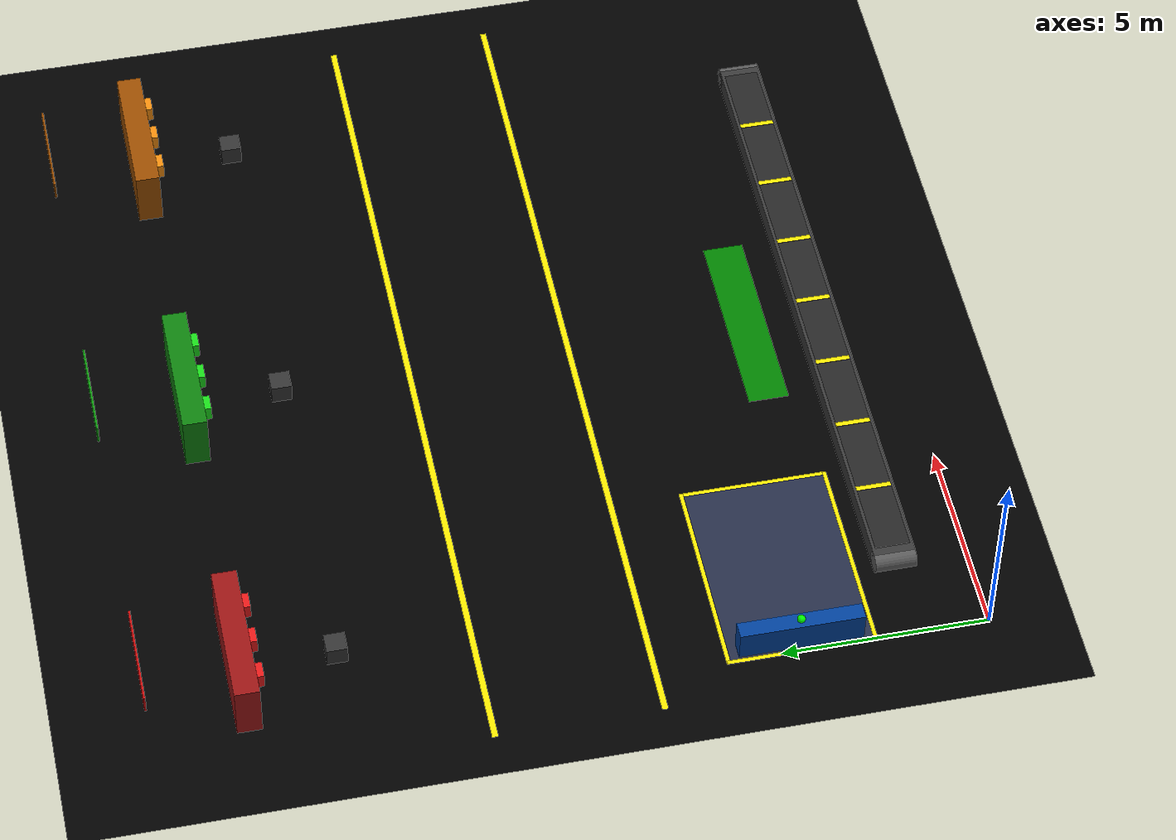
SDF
<?xml version="1.0" ?>
<sdf version="1.6">
  <world name="aria_warehouse">

    <physics type="ode">
      <max_step_size>0.001</max_step_size>
      <real_time_factor>1</real_time_factor>
      <real_time_update_rate>1000</real_time_update_rate>
    </physics>

    <scene>
      <ambient>0.4 0.4 0.4 1</ambient>
      <background>0.1 0.1 0.1 1</background>
      <shadows>false</shadows>
      <grid>false</grid>
      <sky><clouds><speed>0</speed></clouds></sky>
      <origin_visual>false</origin_visual>
    </scene>

    <light name="sun" type="directional">
      <cast_shadows>false</cast_shadows>
      <pose>10 10 20 0 0 0</pose>
      <diffuse>0.8 0.8 0.8 1</diffuse>
      <specular>0.1 0.1 0.1 1</specular>
      <direction>0 0 -1</direction>
    </light>

    <!-- Floor - collision only, transparent visual -->
    <model name="floor">
      <static>true</static>
      <pose>10 10 0 0 0 0</pose>
      <link name="link">
        <collision name="col">
          <geometry><plane><normal>0 0 1</normal><size>24 24</size></plane></geometry>
          <surface><friction><ode><mu>100</mu><mu2>50</mu2></ode></friction></surface>
        </collision>
        <visual name="vis">
          <geometry><plane><normal>0 0 1</normal><size>24 24</size></plane></geometry>
          <material>
            <ambient>0 0 0 1</ambient>
            <diffuse>0 0 0 1</diffuse>
            <specular>0 0 0 1</specular>
            <emissive>0.12 0.14 0.18 1</emissive>
          </material>
        </visual>
      </link>
    </model>

    <!-- Yellow lane lines -->
    <model name="lane_1"><static>true</static><pose>10 8 0.001 0 0 0</pose>
      <link name="link"><visual name="v"><geometry><box><size>22 0.15 0.002</size></box></geometry>
        <material><ambient>1 0.8 0 1</ambient><diffuse>1 0.9 0 1</diffuse><emissive>0.3 0.2 0 1</emissive></material>
      </visual></link></model>

    <model name="lane_2"><static>true</static><pose>10 12 0.001 0 0 0</pose>
      <link name="link"><visual name="v"><geometry><box><size>22 0.15 0.002</size></box></geometry>
        <material><ambient>1 0.8 0 1</ambient><diffuse>1 0.9 0 1</diffuse><emissive>0.3 0.2 0 1</emissive></material>
      </visual></link></model>

    <!-- ═══ ZONE A — Auto Parts (left) ═══ -->
    <model name="rack_A"><static>true</static><pose>2 17.5 0.75 0 0 0</pose>
      <link name="link">
        <collision name="c"><geometry><box><size>3.5 0.6 1.5</size></box></geometry></collision>
        <visual name="v"><geometry><box><size>3.5 0.6 1.5</size></box></geometry>
          <material><ambient>0.5 0.08 0.08 1</ambient><diffuse>0.6 0.08 0.08 1</diffuse>
            <emissive>0.1 0.0 0.0 1</emissive></material></visual>
      </link></model>
    <model name="box_A1"><static>true</static><pose>1.0 17.2 1.1 0 0 0</pose>
      <link name="link"><visual name="v"><geometry><box><size>0.4 0.35 0.4</size></box></geometry>
        <material><ambient>0.8 0.1 0.1 1</ambient><diffuse>0.9 0.1 0.1 1</diffuse>
          <emissive>0.15 0.0 0.0 1</emissive></material></visual></link></model>
    <model name="box_A2"><static>true</static><pose>2.0 17.2 1.1 0 0 0</pose>
      <link name="link"><visual name="v"><geometry><box><size>0.4 0.35 0.4</size></box></geometry>
        <material><ambient>0.8 0.1 0.1 1</ambient><diffuse>0.9 0.1 0.1 1</diffuse>
          <emissive>0.15 0.0 0.0 1</emissive></material></visual></link></model>
    <model name="box_A3"><static>true</static><pose>3.0 17.2 1.1 0 0 0</pose>
      <link name="link"><visual name="v"><geometry><box><size>0.4 0.35 0.4</size></box></geometry>
        <material><ambient>0.8 0.1 0.1 1</ambient><diffuse>0.9 0.1 0.1 1</diffuse>
          <emissive>0.15 0.0 0.0 1</emissive></material></visual></link></model>
    <!-- UR10 pedestal A -->
    <model name="ped_A"><static>true</static><pose>2 15.2 0.25 0 0 0</pose>
      <link name="link">
        <collision name="c"><geometry><box><size>0.5 0.5 0.5</size></box></geometry></collision>
        <visual name="v"><geometry><box><size>0.5 0.5 0.5</size></box></geometry>
          <material><ambient>0.15 0.15 0.15 1</ambient><diffuse>0.2 0.2 0.2 1</diffuse>
            <emissive>0.03 0.03 0.03 1</emissive></material></visual>
      </link></model>
    <!-- Zone A sign -->
    <model name="sign_A"><static>true</static><pose>2 19.8 1.0 0 0 0</pose>
      <link name="link"><visual name="v"><geometry><box><size>2.5 0.05 0.5</size></box></geometry>
        <material><ambient>0.7 0.05 0.05 1</ambient><diffuse>0.8 0.05 0.05 1</diffuse>
          <emissive>0.2 0.0 0.0 1</emissive></material></visual></link></model>

    <!-- ═══ ZONE B — Electronics (center) ═══ -->
    <model name="rack_B"><static>true</static><pose>10 17.5 0.75 0 0 0</pose>
      <link name="link">
        <collision name="c"><geometry><box><size>3.5 0.6 1.5</size></box></geometry></collision>
        <visual name="v"><geometry><box><size>3.5 0.6 1.5</size></box></geometry>
          <material><ambient>0.05 0.4 0.05 1</ambient><diffuse>0.05 0.5 0.05 1</diffuse>
            <emissive>0.0 0.08 0.0 1</emissive></material></visual>
      </link></model>
    <model name="box_B1"><static>true</static><pose>9.0 17.2 1.1 0 0 0</pose>
      <link name="link"><visual name="v"><geometry><box><size>0.4 0.35 0.4</size></box></geometry>
        <material><ambient>0.1 0.75 0.1 1</ambient><diffuse>0.1 0.85 0.1 1</diffuse>
          <emissive>0.0 0.12 0.0 1</emissive></material></visual></link></model>
    <model name="box_B2"><static>true</static><pose>10.0 17.2 1.1 0 0 0</pose>
      <link name="link"><visual name="v"><geometry><box><size>0.4 0.35 0.4</size></box></geometry>
        <material><ambient>0.1 0.75 0.1 1</ambient><diffuse>0.1 0.85 0.1 1</diffuse>
          <emissive>0.0 0.12 0.0 1</emissive></material></visual></link></model>
    <model name="box_B3"><static>true</static><pose>11.0 17.2 1.1 0 0 0</pose>
      <link name="link"><visual name="v"><geometry><box><size>0.4 0.35 0.4</size></box></geometry>
        <material><ambient>0.1 0.75 0.1 1</ambient><diffuse>0.1 0.85 0.1 1</diffuse>
          <emissive>0.0 0.12 0.0 1</emissive></material></visual></link></model>
    <model name="ped_B"><static>true</static><pose>10 15.2 0.25 0 0 0</pose>
      <link name="link">
        <collision name="c"><geometry><box><size>0.5 0.5 0.5</size></box></geometry></collision>
        <visual name="v"><geometry><box><size>0.5 0.5 0.5</size></box></geometry>
          <material><ambient>0.15 0.15 0.15 1</ambient><diffuse>0.2 0.2 0.2 1</diffuse>
            <emissive>0.03 0.03 0.03 1</emissive></material></visual>
      </link></model>
    <model name="sign_B"><static>true</static><pose>10 19.8 1.0 0 0 0</pose>
      <link name="link"><visual name="v"><geometry><box><size>2.5 0.05 0.5</size></box></geometry>
        <material><ambient>0.05 0.5 0.05 1</ambient><diffuse>0.05 0.6 0.05 1</diffuse>
          <emissive>0.0 0.15 0.0 1</emissive></material></visual></link></model>

    <!-- ═══ ZONE C — Raw Materials (right) ═══ -->
    <model name="rack_C"><static>true</static><pose>18 17.5 0.75 0 0 0</pose>
      <link name="link">
        <collision name="c"><geometry><box><size>3.5 0.6 1.5</size></box></geometry></collision>
        <visual name="v"><geometry><box><size>3.5 0.6 1.5</size></box></geometry>
          <material><ambient>0.5 0.25 0.0 1</ambient><diffuse>0.6 0.3 0.0 1</diffuse>
            <emissive>0.1 0.05 0.0 1</emissive></material></visual>
      </link></model>
    <model name="box_C1"><static>true</static><pose>17.0 17.2 1.1 0 0 0</pose>
      <link name="link"><visual name="v"><geometry><box><size>0.4 0.35 0.4</size></box></geometry>
        <material><ambient>0.85 0.5 0.05 1</ambient><diffuse>0.95 0.55 0.05 1</diffuse>
          <emissive>0.15 0.08 0.0 1</emissive></material></visual></link></model>
    <model name="box_C2"><static>true</static><pose>18.0 17.2 1.1 0 0 0</pose>
      <link name="link"><visual name="v"><geometry><box><size>0.4 0.35 0.4</size></box></geometry>
        <material><ambient>0.85 0.5 0.05 1</ambient><diffuse>0.95 0.55 0.05 1</diffuse>
          <emissive>0.15 0.08 0.0 1</emissive></material></visual></link></model>
    <model name="box_C3"><static>true</static><pose>19.0 17.2 1.1 0 0 0</pose>
      <link name="link"><visual name="v"><geometry><box><size>0.4 0.35 0.4</size></box></geometry>
        <material><ambient>0.85 0.5 0.05 1</ambient><diffuse>0.95 0.55 0.05 1</diffuse>
          <emissive>0.15 0.08 0.0 1</emissive></material></visual></link></model>
    <model name="ped_C"><static>true</static><pose>18 15.2 0.25 0 0 0</pose>
      <link name="link">
        <collision name="c"><geometry><box><size>0.5 0.5 0.5</size></box></geometry></collision>
        <visual name="v"><geometry><box><size>0.5 0.5 0.5</size></box></geometry>
          <material><ambient>0.15 0.15 0.15 1</ambient><diffuse>0.2 0.2 0.2 1</diffuse>
            <emissive>0.03 0.03 0.03 1</emissive></material></visual>
      </link></model>
    <model name="sign_C"><static>true</static><pose>18 19.8 1.0 0 0 0</pose>
      <link name="link"><visual name="v"><geometry><box><size>2.5 0.05 0.5</size></box></geometry>
        <material><ambient>0.5 0.25 0.0 1</ambient><diffuse>0.6 0.3 0.0 1</diffuse>
          <emissive>0.12 0.06 0.0 1</emissive></material></visual></link></model>

    <!-- ═══ CONVEYOR BELT ═══ -->
    <model name="conv_body"><static>true</static><pose>10 1.8 0.25 0 0 0</pose>
      <link name="link">
        <collision name="c"><geometry><box><size>16 1.0 0.5</size></box></geometry></collision>
        <visual name="v"><geometry><box><size>16 1.0 0.5</size></box></geometry>
          <material><ambient>0.18 0.18 0.18 1</ambient><diffuse>0.22 0.22 0.22 1</diffuse>
            <emissive>0.04 0.04 0.04 1</emissive></material></visual>
      </link></model>
    <model name="conv_surface"><static>true</static><pose>10 1.8 0.51 0 0 0</pose>
      <link name="link"><visual name="v"><geometry><box><size>15.6 0.85 0.01</size></box></geometry>
        <material><ambient>0.12 0.12 0.12 1</ambient><diffuse>0.15 0.15 0.15 1</diffuse>
          <emissive>0.02 0.02 0.02 1</emissive></material></visual></link></model>
    <!-- Conveyor stripes -->
    <model name="cs1"><static>true</static><pose>4  1.8 0.52 0 0 0</pose><link name="link"><visual name="v"><geometry><box><size>0.12 0.85 0.01</size></box></geometry><material><ambient>0.9 0.8 0 1</ambient><diffuse>1 0.9 0 1</diffuse><emissive>0.3 0.2 0 1</emissive></material></visual></link></model>
    <model name="cs2"><static>true</static><pose>6  1.8 0.52 0 0 0</pose><link name="link"><visual name="v"><geometry><box><size>0.12 0.85 0.01</size></box></geometry><material><ambient>0.9 0.8 0 1</ambient><diffuse>1 0.9 0 1</diffuse><emissive>0.3 0.2 0 1</emissive></material></visual></link></model>
    <model name="cs3"><static>true</static><pose>8  1.8 0.52 0 0 0</pose><link name="link"><visual name="v"><geometry><box><size>0.12 0.85 0.01</size></box></geometry><material><ambient>0.9 0.8 0 1</ambient><diffuse>1 0.9 0 1</diffuse><emissive>0.3 0.2 0 1</emissive></material></visual></link></model>
    <model name="cs4"><static>true</static><pose>10 1.8 0.52 0 0 0</pose><link name="link"><visual name="v"><geometry><box><size>0.12 0.85 0.01</size></box></geometry><material><ambient>0.9 0.8 0 1</ambient><diffuse>1 0.9 0 1</diffuse><emissive>0.3 0.2 0 1</emissive></material></visual></link></model>
    <model name="cs5"><static>true</static><pose>12 1.8 0.52 0 0 0</pose><link name="link"><visual name="v"><geometry><box><size>0.12 0.85 0.01</size></box></geometry><material><ambient>0.9 0.8 0 1</ambient><diffuse>1 0.9 0 1</diffuse><emissive>0.3 0.2 0 1</emissive></material></visual></link></model>
    <model name="cs6"><static>true</static><pose>14 1.8 0.52 0 0 0</pose><link name="link"><visual name="v"><geometry><box><size>0.12 0.85 0.01</size></box></geometry><material><ambient>0.9 0.8 0 1</ambient><diffuse>1 0.9 0 1</diffuse><emissive>0.3 0.2 0 1</emissive></material></visual></link></model>
    <model name="cs7"><static>true</static><pose>16 1.8 0.52 0 0 0</pose><link name="link"><visual name="v"><geometry><box><size>0.12 0.85 0.01</size></box></geometry><material><ambient>0.9 0.8 0 1</ambient><diffuse>1 0.9 0 1</diffuse><emissive>0.3 0.2 0 1</emissive></material></visual></link></model>
    <!-- End rollers -->
    <model name="roller_L"><static>true</static><pose>2 1.8 0.25 1.5708 0 0</pose>
      <link name="link"><visual name="v"><geometry><cylinder><radius>0.25</radius><length>1.0</length></cylinder></geometry>
        <material><ambient>0.3 0.3 0.3 1</ambient><diffuse>0.35 0.35 0.35 1</diffuse>
          <emissive>0.05 0.05 0.05 1</emissive></material></visual></link></model>
    <model name="roller_R"><static>true</static><pose>18 1.8 0.25 1.5708 0 0</pose>
      <link name="link"><visual name="v"><geometry><cylinder><radius>0.25</radius><length>1.0</length></cylinder></geometry>
        <material><ambient>0.3 0.3 0.3 1</ambient><diffuse>0.35 0.35 0.35 1</diffuse>
          <emissive>0.05 0.05 0.05 1</emissive></material></visual></link></model>

    <!-- ═══ STAGING AREA ═══ -->
    <model name="staging_pad"><static>true</static><pose>2.5 4.5 0.002 0 0 0</pose>
      <link name="link"><visual name="v"><geometry><box><size>5 3.5 0.003</size></box></geometry>
        <material><ambient>0.12 0.15 0.22 1</ambient><diffuse>0.15 0.18 0.28 1</diffuse>
          <emissive>0.03 0.04 0.06 1</emissive></material></visual></link></model>
    <!-- Border stripes -->
    <model name="sb_N"><static>true</static><pose>2.5 6.27 0.003 0 0 0</pose>
      <link name="link"><visual name="v"><geometry><box><size>5.1 0.1 0.003</size></box></geometry>
        <material><ambient>0.9 0.8 0 1</ambient><diffuse>1 0.9 0 1</diffuse><emissive>0.3 0.2 0 1</emissive></material></visual></link></model>
    <model name="sb_S"><static>true</static><pose>2.5 2.73 0.003 0 0 0</pose>
      <link name="link"><visual name="v"><geometry><box><size>5.1 0.1 0.003</size></box></geometry>
        <material><ambient>0.9 0.8 0 1</ambient><diffuse>1 0.9 0 1</diffuse><emissive>0.3 0.2 0 1</emissive></material></visual></link></model>
    <model name="sb_W"><static>true</static><pose>0.0 4.5 0.003 0 0 0</pose>
      <link name="link"><visual name="v"><geometry><box><size>0.1 3.6 0.003</size></box></geometry>
        <material><ambient>0.9 0.8 0 1</ambient><diffuse>1 0.9 0 1</diffuse><emissive>0.3 0.2 0 1</emissive></material></visual></link></model>
    <model name="sb_E"><static>true</static><pose>5.0 4.5 0.003 0 0 0</pose>
      <link name="link"><visual name="v"><geometry><box><size>0.1 3.6 0.003</size></box></geometry>
        <material><ambient>0.9 0.8 0 1</ambient><diffuse>1 0.9 0 1</diffuse><emissive>0.3 0.2 0 1</emissive></material></visual></link></model>
    <!-- Charging station -->
    <model name="charger"><static>true</static><pose>0.3 4.5 0.4 0 0 0</pose>
      <link name="link">
        <collision name="c"><geometry><box><size>0.4 3.0 0.8</size></box></geometry></collision>
        <visual name="v"><geometry><box><size>0.4 3.0 0.8</size></box></geometry>
          <material><ambient>0.0 0.2 0.5 1</ambient><diffuse>0.0 0.25 0.6 1</diffuse>
            <emissive>0.0 0.06 0.15 1</emissive></material></visual>
      </link></model>
    <model name="charger_light"><static>true</static><pose>0.3 4.5 0.85 0 0 0</pose>
      <link name="link"><visual name="v"><geometry><sphere><radius>0.1</radius></sphere></geometry>
        <material><ambient>0 0.9 0 1</ambient><diffuse>0 1 0 1</diffuse>
          <emissive>0 0.5 0 1</emissive></material></visual></link></model>

    <!-- Dropoff zone -->
    <model name="dropoff"><static>true</static><pose>10 3.5 0.002 0 0 0</pose>
      <link name="link"><visual name="v"><geometry><box><size>5 1.0 0.003</size></box></geometry>
        <material><ambient>0.0 0.4 0.0 1</ambient><diffuse>0.0 0.5 0.0 1</diffuse>
          <emissive>0.0 0.1 0.0 1</emissive></material></visual></link></model>

    <plugin name="gazebo_ros_state" filename="libgazebo_ros_state.so">
      <ros><namespace>/gazebo</namespace></ros>
      <update_rate>10.0</update_rate>
    </plugin>

  </world>
</sdf>
